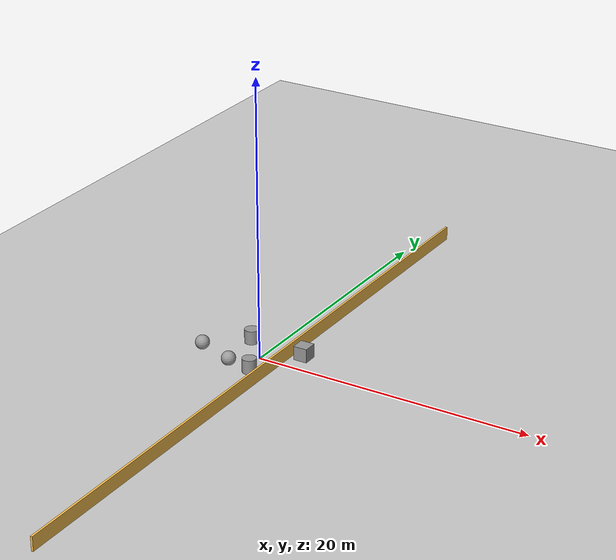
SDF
<sdf version="1.7">
 <world name="default">
  <light name="sun" type="directional">
   <pose>0 0 10 0 -0 0</pose>
   <diffuse>0.8 0.8 0.8 1</diffuse>
   <specular>0.2 0.2 0.2 1</specular>
   <attenuation>
    <range>1000</range>
    <constant>0.9</constant>
    <linear>0.01</linear>
    <quadratic>0.001</quadratic>
   </attenuation>
   <direction>-0.5 0.1 -0.9</direction>
   <spot><inner_angle>0</inner_angle><outer_angle>0</outer_angle><falloff>0</falloff></spot>
  </light>
  <model name="ground_plane">
   <static>1</static>
   <link name="link">
    <collision name="collision">
     <geometry><plane><normal>0 0 1</normal><size>100 100</size></plane></geometry>
     <surface>
      <contact><collide_bitmask>65535</collide_bitmask></contact>
      <friction><ode><mu>100</mu><mu2>50</mu2></ode></friction>
     </surface>
    </collision>
    <visual name="visual">
     <cast_shadows>0</cast_shadows>
     <geometry><plane><normal>0 0 1</normal><size>100 100</size></plane></geometry>
     <material>
      <script><uri>file://media/materials/scripts/gazebo.material</uri><name>Gazebo/Grey</name></script>
     </material>
    </visual>
   </link>
  </model>
  <gravity>0 0 -9.8</gravity>
  <magnetic_field>6e-06 2.3e-05 -4.2e-05</magnetic_field>
  <atmosphere type="adiabatic"/>
  <physics type="ode">
   <max_step_size>0.001</max_step_size>
   <real_time_factor>1</real_time_factor>
   <real_time_update_rate>1000</real_time_update_rate>
  </physics>
  <scene><ambient>0.4 0.4 0.4 1</ambient><background>0.7 0.7 0.7 1</background><shadows>1</shadows></scene>
  <spherical_coordinates>
   <surface_model>EARTH_WGS84</surface_model>
   <latitude_deg>0</latitude_deg>
   <longitude_deg>0</longitude_deg>
   <elevation>0</elevation>
   <heading_deg>0</heading_deg>
  </spherical_coordinates>
  <model name="unit_cylinder">
   <pose>-1.81031 1.7693 0.499992 -3e-06 -4e-06 -0</pose>
   <link name="link">
    <inertial>
     <mass>1</mass>
     <inertia><ixx>0.145833</ixx><ixy>0</ixy><ixz>0</ixz><iyy>0.145833</iyy><iyz>0</iyz><izz>0.125</izz></inertia>
    </inertial>
    <collision name="collision">
     <geometry><cylinder><radius>0.5</radius><length>1</length></cylinder></geometry>
    </collision>
    <visual name="visual">
     <geometry><cylinder><radius>0.5</radius><length>1</length></cylinder></geometry>
     <material>
      <script><name>Gazebo/Grey</name><uri>file://media/materials/scripts/gazebo.material</uri></script>
     </material>
    </visual>
   </link>
  </model>
  <model name="unit_sphere">
   <pose>-1.33084 -1.81725 0.5 0 -0 0</pose>
   <link name="link">
    <inertial>
     <mass>1</mass>
     <inertia><ixx>0.1</ixx><ixy>0</ixy><ixz>0</ixz><iyy>0.1</iyy><iyz>0</iyz><izz>0.1</izz></inertia>
    </inertial>
    <collision name="collision"><geometry><sphere><radius>0.5</radius></sphere></geometry></collision>
    <visual name="visual">
     <geometry><sphere><radius>0.5</radius></sphere></geometry>
     <material>
      <script><name>Gazebo/Grey</name><uri>file://media/materials/scripts/gazebo.material</uri></script>
     </material>
    </visual>
   </link>
  </model>
  <model name="unit_box">
   <pose>2.5065 1.55193 0.499995 0 1e-05 0</pose>
   <link name="link">
    <inertial>
     <mass>1</mass>
     <inertia>
      <ixx>0.166667</ixx>
      <ixy>0</ixy>
      <ixz>0</ixz>
      <iyy>0.166667</iyy>
      <iyz>0</iyz>
      <izz>0.166667</izz>
     </inertia>
    </inertial>
    <collision name="collision"><geometry><box><size>1 1 1</size></box></geometry></collision>
    <visual name="visual">
     <geometry><box><size>1 1 1</size></box></geometry>
     <material>
      <script><name>Gazebo/Grey</name><uri>file://media/materials/scripts/gazebo.material</uri></script>
     </material>
    </visual>
   </link>
  </model>
  <model name="unit_sphere_0">
   <pose>-4.13114 -0.77889 0.5 0 -0 0</pose>
   <link name="link">
    <inertial>
     <mass>1</mass>
     <inertia><ixx>0.1</ixx><ixy>0</ixy><ixz>0</ixz><iyy>0.1</iyy><iyz>0</iyz><izz>0.1</izz></inertia>
    </inertial>
    <collision name="collision"><geometry><sphere><radius>0.5</radius></sphere></geometry></collision>
    <visual name="visual">
     <geometry><sphere><radius>0.5</radius></sphere></geometry>
     <material>
      <script><name>Gazebo/Grey</name><uri>file://media/materials/scripts/gazebo.material</uri></script>
     </material>
    </visual>
   </link>
  </model>
  <model name="unit_cylinder_0">
   <pose>0.365862 -1.88542 0.499993 -3e-06 -4e-06 -0</pose>
   <link name="link">
    <inertial>
     <mass>1</mass>
     <inertia><ixx>0.145833</ixx><ixy>0</ixy><ixz>0</ixz><iyy>0.145833</iyy><iyz>0</iyz><izz>0.125</izz></inertia>
    </inertial>
    <collision name="collision">
     <geometry><cylinder><radius>0.5</radius><length>1</length></cylinder></geometry>
    </collision>
    <visual name="visual">
     <geometry><cylinder><radius>0.5</radius><length>1</length></cylinder></geometry>
     <material>
      <script><name>Gazebo/Grey</name><uri>file://media/materials/scripts/gazebo.material</uri></script>
     </material>
    </visual>
   </link>
  </model>
  <model name="way_50m">
   <link name="Wall_56">
    <pose>0.192125 -1e-06 0 0 0 -1.5708</pose>
    <inertial>
     <mass>1</mass>
     <inertia><ixx>1</ixx><ixy>0</ixy><ixz>0</ixz><iyy>1</iyy><iyz>0</iyz><izz>1</izz></inertia>
    </inertial>
    <visual name="Wall_56_Visual">
     <pose>0 0 0.5 0 -0 0</pose>
     <geometry><box><size>50 0.15 1</size></box></geometry>
     <material>
      <script><uri>file://media/materials/scripts/gazebo.material</uri><name>Gazebo/Grey</name></script>
      <ambient>1 0.765 0.306 1</ambient>
      <shader type="pixel"><normal_map>__default__</normal_map></shader>
      <diffuse>0.7 0.7 0.7 1</diffuse>
      <specular>0.01 0.01 0.01 1</specular>
      <emissive>0 0 0 1</emissive>
     </material>
     <meta><layer>0</layer></meta>
    </visual>
    <collision name="Wall_56_Collision">
     <pose>0 0 0.5 0 -0 0</pose>
     <geometry><box><size>50 0.15 1</size></box></geometry>
     <surface>
      <friction>
       <ode><mu>1</mu><mu2>1</mu2><fdir1>0 0 0</fdir1><slip1>0</slip1><slip2>0</slip2></ode>
       <torsional>
        <coefficient>1</coefficient>
        <patch_radius>0</patch_radius>
        <surface_radius>0</surface_radius>
        <use_patch_radius>1</use_patch_radius>
        <ode><slip>0</slip></ode>
       </torsional>
      </friction>
      <bounce><restitution_coefficient>0</restitution_coefficient><threshold>1e+06</threshold></bounce>
      <contact>
       <collide_without_contact>0</collide_without_contact>
       <collide_without_contact_bitmask>1</collide_without_contact_bitmask>
       <collide_bitmask>1</collide_bitmask>
       <ode>
        <soft_cfm>0</soft_cfm>
        <soft_erp>0.2</soft_erp>
        <kp>1e+13</kp>
        <kd>1</kd>
        <max_vel>0.01</max_vel>
        <min_depth>0</min_depth>
       </ode>
       <bullet>
        <split_impulse>1</split_impulse>
        <split_impulse_penetration_threshold>-0.01</split_impulse_penetration_threshold>
        <soft_cfm>0</soft_cfm>
        <soft_erp>0.2</soft_erp>
        <kp>1e+13</kp>
        <kd>1</kd>
       </bullet>
      </contact>
     </surface>
    </collision>
   </link>
   <static>1</static>
   <pose>1.39312 -1.37092 0 0 -0 0</pose>
  </model>
 </world>
</sdf>
